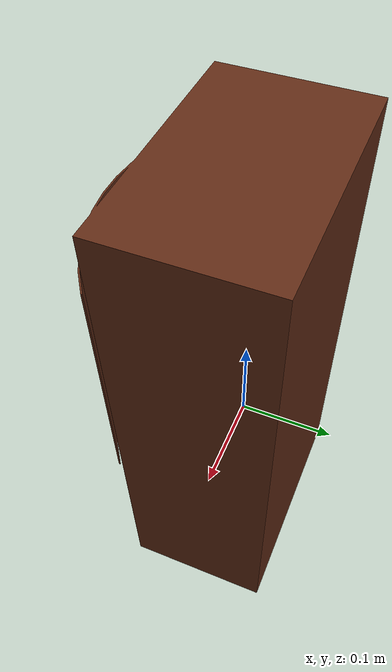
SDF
<?xml version="1.0" ?>
<sdf version="1.5">
  <model name="cabinet">
    <static>true</static>
    <link name="cabinet_link">
        <pose>0 0 0 0 0 0</pose>
        <collision name="cabinet_collision">
            <pose>0 0 0.1 0 0 0</pose>
         <geometry>
	        <box>
                <size>0.247 0.199 0.505</size>
            </box>
        </geometry>
        <surface>
          <friction>
            <ode>
              <mu>30</mu>
              <mu2>30</mu2>
            </ode>
          </friction>
        </surface>
      </collision>

      <visual name="cabinet_mesh">
        <cast_shadows>true</cast_shadows>
        <geometry>
            <mesh>
                <uri>model://lc_cabinet/meshes/cabinet.dae</uri>
            </mesh>
        </geometry>
	    <material>
          <script>
            <uri>model://lc_cabinet/materials/scripts</uri>
            <uri>model://lc_cabinet/materials/textures</uri>
            <name>cabinetMat/Diffuse</name>
          </script>
        </material>
      </visual>
    </link>
  </model>
</sdf>
